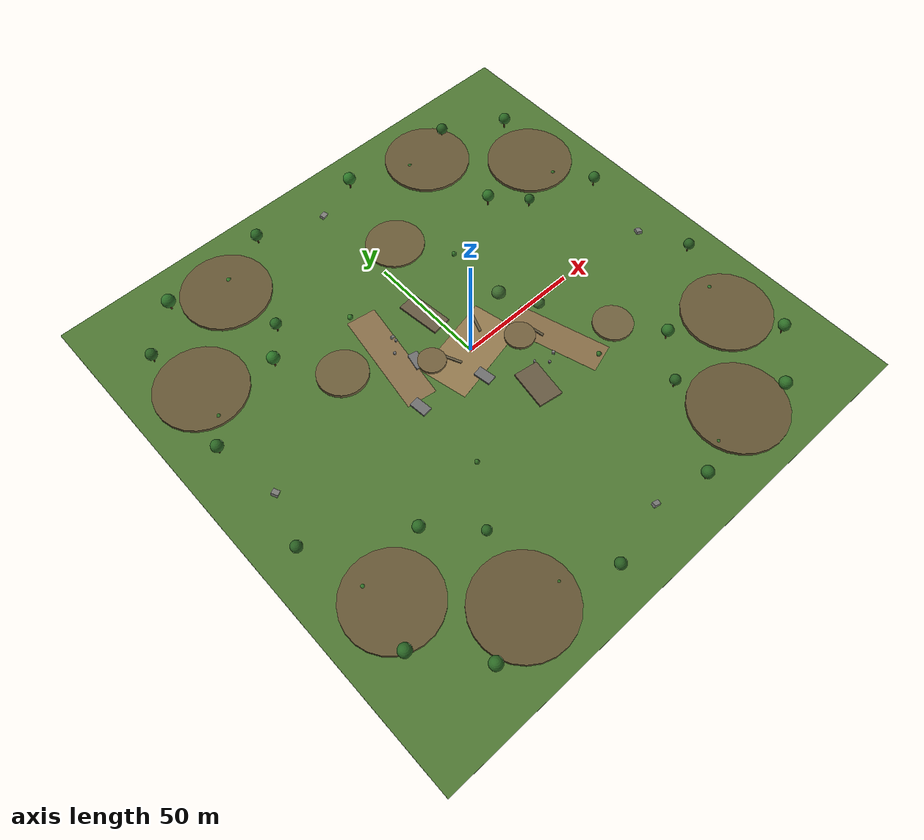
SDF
<?xml version="1.0" ?>
<sdf version="1.7">
  <model name="testworld">
    <static>true</static>
    <self_collide>false</self_collide>
    <allow_auto_disable>true</allow_auto_disable>

    <link name="terrain">
      <pose>0 0 0 0 0 0</pose>

      <collision name="ground_collision">
        <geometry>
          <box>
            <size>220 220 0.6</size>
          </box>
        </geometry>
        <pose>0 0 -0.3 0 0 0</pose>
      </collision>

      <visual name="ground_visual">
        <geometry>
          <box>
            <size>220 220 0.2</size>
          </box>
        </geometry>
        <pose>0 0 -0.1 0 0 0</pose>
        <material>
          <ambient>0.26 0.39 0.18 1</ambient>
          <diffuse>0.31 0.47 0.20 1</diffuse>
          <specular>0.05 0.05 0.05 1</specular>
        </material>
      </visual>

      <visual name="clearing_visual">
        <geometry>
          <box>
            <size>36 20 0.03</size>
          </box>
        </geometry>
        <pose>0 0 0.015 0 0 0.22</pose>
        <material>
          <ambient>0.46 0.38 0.25 1</ambient>
          <diffuse>0.58 0.48 0.31 1</diffuse>
          <specular>0.02 0.02 0.02 1</specular>
        </material>
      </visual>

      <visual name="trail_north">
        <geometry>
          <box>
            <size>12 44 0.03</size>
          </box>
        </geometry>
        <pose>-24 18 0.015 0 0 -0.15</pose>
        <material>
          <ambient>0.43 0.35 0.23 1</ambient>
          <diffuse>0.54 0.44 0.29 1</diffuse>
          <specular>0.02 0.02 0.02 1</specular>
        </material>
      </visual>

      <visual name="trail_south">
        <geometry>
          <box>
            <size>12 38 0.03</size>
          </box>
        </geometry>
        <pose>28 -18 0.015 0 0 0.3</pose>
        <material>
          <ambient>0.42 0.34 0.22 1</ambient>
          <diffuse>0.53 0.43 0.28 1</diffuse>
          <specular>0.02 0.02 0.02 1</specular>
        </material>
      </visual>
    </link>

    <link name="perimeter_berm_north_west">
      <pose>-52 84 0.65 0 0 0.1</pose>
      <collision name="collision">
        <geometry>
          <cylinder>
            <radius>18</radius>
            <length>1.3</length>
          </cylinder>
        </geometry>
      </collision>
      <visual name="visual">
        <geometry>
          <cylinder>
            <radius>18</radius>
            <length>1.3</length>
          </cylinder>
        </geometry>
        <material>
          <ambient>0.30 0.26 0.17 1</ambient>
          <diffuse>0.40 0.34 0.21 1</diffuse>
        </material>
      </visual>
    </link>

    <link name="perimeter_berm_north_east">
      <pose>52 84 0.65 0 0 -0.08</pose>
      <collision name="collision">
        <geometry>
          <cylinder>
            <radius>18</radius>
            <length>1.3</length>
          </cylinder>
        </geometry>
      </collision>
      <visual name="visual">
        <geometry>
          <cylinder>
            <radius>18</radius>
            <length>1.3</length>
          </cylinder>
        </geometry>
        <material>
          <ambient>0.30 0.26 0.17 1</ambient>
          <diffuse>0.40 0.34 0.21 1</diffuse>
        </material>
      </visual>
    </link>

    <link name="perimeter_berm_south_west">
      <pose>-54 -84 0.7 0 0 0.06</pose>
      <collision name="collision">
        <geometry>
          <cylinder>
            <radius>19</radius>
            <length>1.4</length>
          </cylinder>
        </geometry>
      </collision>
      <visual name="visual">
        <geometry>
          <cylinder>
            <radius>19</radius>
            <length>1.4</length>
          </cylinder>
        </geometry>
        <material>
          <ambient>0.29 0.25 0.16 1</ambient>
          <diffuse>0.39 0.33 0.20 1</diffuse>
        </material>
      </visual>
    </link>

    <link name="perimeter_berm_south_east">
      <pose>54 -84 0.7 0 0 -0.04</pose>
      <collision name="collision">
        <geometry>
          <cylinder>
            <radius>19</radius>
            <length>1.4</length>
          </cylinder>
        </geometry>
      </collision>
      <visual name="visual">
        <geometry>
          <cylinder>
            <radius>19</radius>
            <length>1.4</length>
          </cylinder>
        </geometry>
        <material>
          <ambient>0.29 0.25 0.16 1</ambient>
          <diffuse>0.39 0.33 0.20 1</diffuse>
        </material>
      </visual>
    </link>

    <link name="perimeter_berm_west_north">
      <pose>-84 54 0.65 0 0 0.1</pose>
      <collision name="collision">
        <geometry>
          <cylinder>
            <radius>18</radius>
            <length>1.3</length>
          </cylinder>
        </geometry>
      </collision>
      <visual name="visual">
        <geometry>
          <cylinder>
            <radius>18</radius>
            <length>1.3</length>
          </cylinder>
        </geometry>
        <material>
          <ambient>0.30 0.26 0.17 1</ambient>
          <diffuse>0.40 0.34 0.21 1</diffuse>
        </material>
      </visual>
    </link>

    <link name="perimeter_berm_west_south">
      <pose>-84 -54 0.65 0 0 -0.1</pose>
      <collision name="collision">
        <geometry>
          <cylinder>
            <radius>18</radius>
            <length>1.3</length>
          </cylinder>
        </geometry>
      </collision>
      <visual name="visual">
        <geometry>
          <cylinder>
            <radius>18</radius>
            <length>1.3</length>
          </cylinder>
        </geometry>
        <material>
          <ambient>0.30 0.26 0.17 1</ambient>
          <diffuse>0.40 0.34 0.21 1</diffuse>
        </material>
      </visual>
    </link>

    <link name="perimeter_berm_east_north">
      <pose>84 54 0.65 0 0 -0.1</pose>
      <collision name="collision">
        <geometry>
          <cylinder>
            <radius>18</radius>
            <length>1.3</length>
          </cylinder>
        </geometry>
      </collision>
      <visual name="visual">
        <geometry>
          <cylinder>
            <radius>18</radius>
            <length>1.3</length>
          </cylinder>
        </geometry>
        <material>
          <ambient>0.30 0.26 0.17 1</ambient>
          <diffuse>0.40 0.34 0.21 1</diffuse>
        </material>
      </visual>
    </link>

    <link name="perimeter_berm_east_south">
      <pose>84 -54 0.65 0 0 0.08</pose>
      <collision name="collision">
        <geometry>
          <cylinder>
            <radius>18</radius>
            <length>1.3</length>
          </cylinder>
        </geometry>
      </collision>
      <visual name="visual">
        <geometry>
          <cylinder>
            <radius>18</radius>
            <length>1.3</length>
          </cylinder>
        </geometry>
        <material>
          <ambient>0.30 0.26 0.17 1</ambient>
          <diffuse>0.40 0.34 0.21 1</diffuse>
        </material>
      </visual>
    </link>

    <link name="berm_west">
      <pose>-42 24 0.8 0 0 0.35</pose>
      <collision name="collision">
        <geometry>
          <cylinder>
            <radius>10</radius>
            <length>1.6</length>
          </cylinder>
        </geometry>
      </collision>
      <visual name="visual">
        <geometry>
          <cylinder>
            <radius>10</radius>
            <length>1.6</length>
          </cylinder>
        </geometry>
        <material>
          <ambient>0.35 0.30 0.20 1</ambient>
          <diffuse>0.43 0.37 0.23 1</diffuse>
        </material>
      </visual>
    </link>

    <link name="berm_east">
      <pose>48 -28 0.6 0 0 -0.2</pose>
      <collision name="collision">
        <geometry>
          <cylinder>
            <radius>8</radius>
            <length>1.2</length>
          </cylinder>
        </geometry>
      </collision>
      <visual name="visual">
        <geometry>
          <cylinder>
            <radius>8</radius>
            <length>1.2</length>
          </cylinder>
        </geometry>
        <material>
          <ambient>0.37 0.31 0.20 1</ambient>
          <diffuse>0.44 0.38 0.24 1</diffuse>
        </material>
      </visual>
    </link>

    <link name="berm_far_north">
      <pose>12 58 0.5 0 0 0.1</pose>
      <collision name="collision">
        <geometry>
          <cylinder>
            <radius>12</radius>
            <length>1.0</length>
          </cylinder>
        </geometry>
      </collision>
      <visual name="visual">
        <geometry>
          <cylinder>
            <radius>12</radius>
            <length>1.0</length>
          </cylinder>
        </geometry>
        <material>
          <ambient>0.34 0.29 0.18 1</ambient>
          <diffuse>0.42 0.36 0.22 1</diffuse>
        </material>
      </visual>
    </link>

    <link name="tree_cluster_nw_1">
      <pose>-58 44 0 0 0 0</pose>
      <collision name="trunk_collision">
        <pose>0 0 2.2 0 0 0</pose>
        <geometry>
          <cylinder>
            <radius>0.34</radius>
            <length>4.4</length>
          </cylinder>
        </geometry>
      </collision>
      <collision name="canopy_collision">
        <pose>0 0 5.5 0 0 0</pose>
        <geometry>
          <sphere>
            <radius>2.2</radius>
          </sphere>
        </geometry>
      </collision>
      <visual name="trunk_visual">
        <pose>0 0 2.2 0 0 0</pose>
        <geometry>
          <cylinder>
            <radius>0.30</radius>
            <length>4.4</length>
          </cylinder>
        </geometry>
        <material>
          <ambient>0.31 0.20 0.11 1</ambient>
          <diffuse>0.40 0.25 0.14 1</diffuse>
        </material>
      </visual>
      <visual name="canopy_visual">
        <pose>0 0 5.6 0 0 0</pose>
        <geometry>
          <sphere>
            <radius>2.5</radius>
          </sphere>
        </geometry>
        <material>
          <ambient>0.12 0.30 0.12 1</ambient>
          <diffuse>0.18 0.47 0.16 1</diffuse>
        </material>
      </visual>
    </link>

    <link name="tree_cluster_nw_2">
      <pose>-48 56 0 0 0 0</pose>
      <collision name="trunk_collision">
        <pose>0 0 2.0 0 0 0</pose>
        <geometry>
          <cylinder>
            <radius>0.28</radius>
            <length>4.0</length>
          </cylinder>
        </geometry>
      </collision>
      <collision name="canopy_collision">
        <pose>0 0 5.0 0 0 0</pose>
        <geometry>
          <sphere>
            <radius>1.9</radius>
          </sphere>
        </geometry>
      </collision>
      <visual name="trunk_visual">
        <pose>0 0 2.0 0 0 0</pose>
        <geometry>
          <cylinder>
            <radius>0.25</radius>
            <length>4.0</length>
          </cylinder>
        </geometry>
        <material>
          <ambient>0.30 0.19 0.10 1</ambient>
          <diffuse>0.38 0.24 0.13 1</diffuse>
        </material>
      </visual>
      <visual name="canopy_visual">
        <pose>0 0 5.0 0 0 0</pose>
        <geometry>
          <sphere>
            <radius>2.2</radius>
          </sphere>
        </geometry>
        <material>
          <ambient>0.10 0.27 0.10 1</ambient>
          <diffuse>0.16 0.40 0.14 1</diffuse>
        </material>
      </visual>
    </link>

    <link name="tree_cluster_ne_1">
      <pose>54 48 0 0 0 0</pose>
      <collision name="trunk_collision">
        <pose>0 0 2.3 0 0 0</pose>
        <geometry>
          <cylinder>
            <radius>0.35</radius>
            <length>4.6</length>
          </cylinder>
        </geometry>
      </collision>
      <collision name="canopy_collision">
        <pose>0 0 5.7 0 0 0</pose>
        <geometry>
          <sphere>
            <radius>2.1</radius>
          </sphere>
        </geometry>
      </collision>
      <visual name="trunk_visual">
        <pose>0 0 2.3 0 0 0</pose>
        <geometry>
          <cylinder>
            <radius>0.32</radius>
            <length>4.6</length>
          </cylinder>
        </geometry>
        <material>
          <ambient>0.31 0.20 0.11 1</ambient>
          <diffuse>0.39 0.24 0.13 1</diffuse>
        </material>
      </visual>
      <visual name="canopy_visual">
        <pose>0 0 5.8 0 0 0</pose>
        <geometry>
          <sphere>
            <radius>2.4</radius>
          </sphere>
        </geometry>
        <material>
          <ambient>0.13 0.29 0.12 1</ambient>
          <diffuse>0.18 0.44 0.15 1</diffuse>
        </material>
      </visual>
    </link>

    <link name="tree_cluster_ne_2">
      <pose>66 36 0 0 0 0</pose>
      <collision name="trunk_collision">
        <pose>0 0 1.8 0 0 0</pose>
        <geometry>
          <cylinder>
            <radius>0.25</radius>
            <length>3.6</length>
          </cylinder>
        </geometry>
      </collision>
      <collision name="canopy_collision">
        <pose>0 0 4.5 0 0 0</pose>
        <geometry>
          <sphere>
            <radius>1.7</radius>
          </sphere>
        </geometry>
      </collision>
      <visual name="trunk_visual">
        <pose>0 0 1.8 0 0 0</pose>
        <geometry>
          <cylinder>
            <radius>0.22</radius>
            <length>3.6</length>
          </cylinder>
        </geometry>
        <material>
          <ambient>0.29 0.18 0.10 1</ambient>
          <diffuse>0.36 0.23 0.12 1</diffuse>
        </material>
      </visual>
      <visual name="canopy_visual">
        <pose>0 0 4.5 0 0 0</pose>
        <geometry>
          <sphere>
            <radius>2.0</radius>
          </sphere>
        </geometry>
        <material>
          <ambient>0.10 0.25 0.09 1</ambient>
          <diffuse>0.15 0.37 0.13 1</diffuse>
        </material>
      </visual>
    </link>

    <link name="tree_cluster_sw_1">
      <pose>-62 -42 0 0 0 0</pose>
      <collision name="trunk_collision">
        <pose>0 0 2.1 0 0 0</pose>
        <geometry>
          <cylinder>
            <radius>0.30</radius>
            <length>4.2</length>
          </cylinder>
        </geometry>
      </collision>
      <collision name="canopy_collision">
        <pose>0 0 5.1 0 0 0</pose>
        <geometry>
          <sphere>
            <radius>2.0</radius>
          </sphere>
        </geometry>
      </collision>
      <visual name="trunk_visual">
        <pose>0 0 2.1 0 0 0</pose>
        <geometry>
          <cylinder>
            <radius>0.27</radius>
            <length>4.2</length>
          </cylinder>
        </geometry>
        <material>
          <ambient>0.30 0.19 0.10 1</ambient>
          <diffuse>0.38 0.24 0.13 1</diffuse>
        </material>
      </visual>
      <visual name="canopy_visual">
        <pose>0 0 5.1 0 0 0</pose>
        <geometry>
          <sphere>
            <radius>2.3</radius>
          </sphere>
        </geometry>
        <material>
          <ambient>0.11 0.27 0.10 1</ambient>
          <diffuse>0.17 0.41 0.14 1</diffuse>
        </material>
      </visual>
    </link>

    <link name="tree_cluster_sw_2">
      <pose>-46 -58 0 0 0 0</pose>
      <collision name="trunk_collision">
        <pose>0 0 1.7 0 0 0</pose>
        <geometry>
          <cylinder>
            <radius>0.24</radius>
            <length>3.4</length>
          </cylinder>
        </geometry>
      </collision>
      <collision name="canopy_collision">
        <pose>0 0 4.1 0 0 0</pose>
        <geometry>
          <sphere>
            <radius>1.6</radius>
          </sphere>
        </geometry>
      </collision>
      <visual name="trunk_visual">
        <pose>0 0 1.7 0 0 0</pose>
        <geometry>
          <cylinder>
            <radius>0.21</radius>
            <length>3.4</length>
          </cylinder>
        </geometry>
        <material>
          <ambient>0.28 0.18 0.09 1</ambient>
          <diffuse>0.35 0.22 0.12 1</diffuse>
        </material>
      </visual>
      <visual name="canopy_visual">
        <pose>0 0 4.1 0 0 0</pose>
        <geometry>
          <sphere>
            <radius>1.9</radius>
          </sphere>
        </geometry>
        <material>
          <ambient>0.11 0.26 0.10 1</ambient>
          <diffuse>0.16 0.38 0.13 1</diffuse>
        </material>
      </visual>
    </link>

    <link name="tree_cluster_se_1">
      <pose>58 -46 0 0 0 0</pose>
      <collision name="trunk_collision">
        <pose>0 0 2.2 0 0 0</pose>
        <geometry>
          <cylinder>
            <radius>0.33</radius>
            <length>4.4</length>
          </cylinder>
        </geometry>
      </collision>
      <collision name="canopy_collision">
        <pose>0 0 5.4 0 0 0</pose>
        <geometry>
          <sphere>
            <radius>2.0</radius>
          </sphere>
        </geometry>
      </collision>
      <visual name="trunk_visual">
        <pose>0 0 2.2 0 0 0</pose>
        <geometry>
          <cylinder>
            <radius>0.29</radius>
            <length>4.4</length>
          </cylinder>
        </geometry>
        <material>
          <ambient>0.31 0.20 0.11 1</ambient>
          <diffuse>0.40 0.25 0.14 1</diffuse>
        </material>
      </visual>
      <visual name="canopy_visual">
        <pose>0 0 5.4 0 0 0</pose>
        <geometry>
          <sphere>
            <radius>2.4</radius>
          </sphere>
        </geometry>
        <material>
          <ambient>0.13 0.29 0.11 1</ambient>
          <diffuse>0.18 0.43 0.15 1</diffuse>
        </material>
      </visual>
    </link>

    <link name="tree_cluster_se_2">
      <pose>44 -62 0 0 0 0</pose>
      <collision name="trunk_collision">
        <pose>0 0 1.9 0 0 0</pose>
        <geometry>
          <cylinder>
            <radius>0.26</radius>
            <length>3.8</length>
          </cylinder>
        </geometry>
      </collision>
      <collision name="canopy_collision">
        <pose>0 0 4.7 0 0 0</pose>
        <geometry>
          <sphere>
            <radius>1.8</radius>
          </sphere>
        </geometry>
      </collision>
      <visual name="trunk_visual">
        <pose>0 0 1.9 0 0 0</pose>
        <geometry>
          <cylinder>
            <radius>0.23</radius>
            <length>3.8</length>
          </cylinder>
        </geometry>
        <material>
          <ambient>0.29 0.18 0.09 1</ambient>
          <diffuse>0.36 0.23 0.12 1</diffuse>
        </material>
      </visual>
      <visual name="canopy_visual">
        <pose>0 0 4.7 0 0 0</pose>
        <geometry>
          <sphere>
            <radius>2.1</radius>
          </sphere>
        </geometry>
        <material>
          <ambient>0.10 0.25 0.09 1</ambient>
          <diffuse>0.16 0.37 0.13 1</diffuse>
        </material>
      </visual>
    </link>

    <link name="bush_northwest">
      <pose>-24 42 0.55 0 0 0</pose>
      <collision name="collision">
        <geometry>
          <sphere>
            <radius>0.9</radius>
          </sphere>
        </geometry>
      </collision>
      <visual name="visual">
        <geometry>
          <sphere>
            <radius>1.1</radius>
          </sphere>
        </geometry>
        <material>
          <ambient>0.16 0.34 0.12 1</ambient>
          <diffuse>0.22 0.50 0.17 1</diffuse>
        </material>
      </visual>
    </link>

    <link name="bush_northeast">
      <pose>26 38 0.5 0 0 0</pose>
      <collision name="collision">
        <geometry>
          <sphere>
            <radius>0.8</radius>
          </sphere>
        </geometry>
      </collision>
      <visual name="visual">
        <geometry>
          <sphere>
            <radius>1.0</radius>
          </sphere>
        </geometry>
        <material>
          <ambient>0.15 0.31 0.11 1</ambient>
          <diffuse>0.20 0.45 0.16 1</diffuse>
        </material>
      </visual>
    </link>

    <link name="bush_southwest">
      <pose>-30 -36 0.45 0 0 0</pose>
      <collision name="collision">
        <geometry>
          <sphere>
            <radius>0.7</radius>
          </sphere>
        </geometry>
      </collision>
      <visual name="visual">
        <geometry>
          <sphere>
            <radius>0.95</radius>
          </sphere>
        </geometry>
        <material>
          <ambient>0.15 0.29 0.10 1</ambient>
          <diffuse>0.20 0.42 0.14 1</diffuse>
        </material>
      </visual>
    </link>

    <link name="bush_southeast">
      <pose>34 -34 0.5 0 0 0</pose>
      <collision name="collision">
        <geometry>
          <sphere>
            <radius>0.75</radius>
          </sphere>
        </geometry>
      </collision>
      <visual name="visual">
        <geometry>
          <sphere>
            <radius>1.0</radius>
          </sphere>
        </geometry>
        <material>
          <ambient>0.15 0.30 0.11 1</ambient>
          <diffuse>0.21 0.44 0.15 1</diffuse>
        </material>
      </visual>
    </link>

    <link name="rock_west">
      <pose>-18 24 0.45 0.1 0.3 0</pose>
      <collision name="collision">
        <geometry>
          <box>
            <size>1.2 1.0 0.9</size>
          </box>
        </geometry>
      </collision>
      <visual name="visual">
        <geometry>
          <box>
            <size>1.4 1.1 1.0</size>
          </box>
        </geometry>
        <material>
          <ambient>0.42 0.42 0.40 1</ambient>
          <diffuse>0.54 0.54 0.52 1</diffuse>
        </material>
      </visual>
    </link>

    <link name="rock_east">
      <pose>22 -22 0.35 -0.15 0.2 0.5</pose>
      <collision name="collision">
        <geometry>
          <box>
            <size>1.0 0.9 0.7</size>
          </box>
        </geometry>
      </collision>
      <visual name="visual">
        <geometry>
          <box>
            <size>1.2 1.0 0.8</size>
          </box>
        </geometry>
        <material>
          <ambient>0.40 0.40 0.39 1</ambient>
          <diffuse>0.50 0.50 0.49 1</diffuse>
        </material>
      </visual>
    </link>

    <link name="tree_north_1">
      <pose>-72 92 0 0 0 0</pose>
      <collision name="trunk_collision">
        <pose>0 0 2.1 0 0 0</pose>
        <geometry>
          <cylinder>
            <radius>0.34</radius>
            <length>4.2</length>
          </cylinder>
        </geometry>
      </collision>
      <collision name="canopy_collision">
        <pose>0 0 5.3 0 0 0</pose>
        <geometry>
          <sphere>
            <radius>2.3</radius>
          </sphere>
        </geometry>
      </collision>
      <visual name="trunk_visual">
        <pose>0 0 2.1 0 0 0</pose>
        <geometry>
          <cylinder>
            <radius>0.30</radius>
            <length>4.2</length>
          </cylinder>
        </geometry>
        <material>
          <ambient>0.31 0.20 0.11 1</ambient>
          <diffuse>0.40 0.25 0.14 1</diffuse>
        </material>
      </visual>
      <visual name="canopy_visual">
        <pose>0 0 5.4 0 0 0</pose>
        <geometry>
          <sphere>
            <radius>2.7</radius>
          </sphere>
        </geometry>
        <material>
          <ambient>0.11 0.28 0.11 1</ambient>
          <diffuse>0.18 0.44 0.16 1</diffuse>
        </material>
      </visual>
    </link>

    <link name="tree_north_2">
      <pose>-28 96 0 0 0 0</pose>
      <collision name="trunk_collision">
        <pose>0 0 2.0 0 0 0</pose>
        <geometry>
          <cylinder>
            <radius>0.30</radius>
            <length>4.0</length>
          </cylinder>
        </geometry>
      </collision>
      <collision name="canopy_collision">
        <pose>0 0 5.0 0 0 0</pose>
        <geometry>
          <sphere>
            <radius>2.1</radius>
          </sphere>
        </geometry>
      </collision>
      <visual name="trunk_visual">
        <pose>0 0 2.0 0 0 0</pose>
        <geometry>
          <cylinder>
            <radius>0.26</radius>
            <length>4.0</length>
          </cylinder>
        </geometry>
        <material>
          <ambient>0.30 0.19 0.10 1</ambient>
          <diffuse>0.38 0.24 0.13 1</diffuse>
        </material>
      </visual>
      <visual name="canopy_visual">
        <pose>0 0 5.0 0 0 0</pose>
        <geometry>
          <sphere>
            <radius>2.4</radius>
          </sphere>
        </geometry>
        <material>
          <ambient>0.10 0.27 0.10 1</ambient>
          <diffuse>0.16 0.40 0.14 1</diffuse>
        </material>
      </visual>
    </link>

    <link name="tree_north_3">
      <pose>18 94 0 0 0 0</pose>
      <collision name="trunk_collision">
        <pose>0 0 2.2 0 0 0</pose>
        <geometry>
          <cylinder>
            <radius>0.34</radius>
            <length>4.4</length>
          </cylinder>
        </geometry>
      </collision>
      <collision name="canopy_collision">
        <pose>0 0 5.5 0 0 0</pose>
        <geometry>
          <sphere>
            <radius>2.2</radius>
          </sphere>
        </geometry>
      </collision>
      <visual name="trunk_visual">
        <pose>0 0 2.2 0 0 0</pose>
        <geometry>
          <cylinder>
            <radius>0.30</radius>
            <length>4.4</length>
          </cylinder>
        </geometry>
        <material>
          <ambient>0.31 0.20 0.11 1</ambient>
          <diffuse>0.40 0.25 0.14 1</diffuse>
        </material>
      </visual>
      <visual name="canopy_visual">
        <pose>0 0 5.6 0 0 0</pose>
        <geometry>
          <sphere>
            <radius>2.6</radius>
          </sphere>
        </geometry>
        <material>
          <ambient>0.12 0.30 0.12 1</ambient>
          <diffuse>0.18 0.47 0.16 1</diffuse>
        </material>
      </visual>
    </link>

    <link name="tree_north_4">
      <pose>66 90 0 0 0 0</pose>
      <collision name="trunk_collision">
        <pose>0 0 1.9 0 0 0</pose>
        <geometry>
          <cylinder>
            <radius>0.28</radius>
            <length>3.8</length>
          </cylinder>
        </geometry>
      </collision>
      <collision name="canopy_collision">
        <pose>0 0 4.8 0 0 0</pose>
        <geometry>
          <sphere>
            <radius>2.0</radius>
          </sphere>
        </geometry>
      </collision>
      <visual name="trunk_visual">
        <pose>0 0 1.9 0 0 0</pose>
        <geometry>
          <cylinder>
            <radius>0.24</radius>
            <length>3.8</length>
          </cylinder>
        </geometry>
        <material>
          <ambient>0.29 0.18 0.09 1</ambient>
          <diffuse>0.36 0.23 0.12 1</diffuse>
        </material>
      </visual>
      <visual name="canopy_visual">
        <pose>0 0 4.8 0 0 0</pose>
        <geometry>
          <sphere>
            <radius>2.3</radius>
          </sphere>
        </geometry>
        <material>
          <ambient>0.10 0.25 0.09 1</ambient>
          <diffuse>0.16 0.37 0.13 1</diffuse>
        </material>
      </visual>
    </link>

    <link name="tree_south_1">
      <pose>-74 -92 0 0 0 0</pose>
      <collision name="trunk_collision">
        <pose>0 0 2.1 0 0 0</pose>
        <geometry>
          <cylinder>
            <radius>0.32</radius>
            <length>4.2</length>
          </cylinder>
        </geometry>
      </collision>
      <collision name="canopy_collision">
        <pose>0 0 5.2 0 0 0</pose>
        <geometry>
          <sphere>
            <radius>2.2</radius>
          </sphere>
        </geometry>
      </collision>
      <visual name="trunk_visual">
        <pose>0 0 2.1 0 0 0</pose>
        <geometry>
          <cylinder>
            <radius>0.28</radius>
            <length>4.2</length>
          </cylinder>
        </geometry>
        <material>
          <ambient>0.30 0.19 0.10 1</ambient>
          <diffuse>0.38 0.24 0.13 1</diffuse>
        </material>
      </visual>
      <visual name="canopy_visual">
        <pose>0 0 5.2 0 0 0</pose>
        <geometry>
          <sphere>
            <radius>2.5</radius>
          </sphere>
        </geometry>
        <material>
          <ambient>0.11 0.27 0.10 1</ambient>
          <diffuse>0.17 0.41 0.14 1</diffuse>
        </material>
      </visual>
    </link>

    <link name="tree_south_2">
      <pose>-22 -96 0 0 0 0</pose>
      <collision name="trunk_collision">
        <pose>0 0 1.9 0 0 0</pose>
        <geometry>
          <cylinder>
            <radius>0.27</radius>
            <length>3.8</length>
          </cylinder>
        </geometry>
      </collision>
      <collision name="canopy_collision">
        <pose>0 0 4.7 0 0 0</pose>
        <geometry>
          <sphere>
            <radius>1.9</radius>
          </sphere>
        </geometry>
      </collision>
      <visual name="trunk_visual">
        <pose>0 0 1.9 0 0 0</pose>
        <geometry>
          <cylinder>
            <radius>0.23</radius>
            <length>3.8</length>
          </cylinder>
        </geometry>
        <material>
          <ambient>0.29 0.18 0.09 1</ambient>
          <diffuse>0.36 0.23 0.12 1</diffuse>
        </material>
      </visual>
      <visual name="canopy_visual">
        <pose>0 0 4.7 0 0 0</pose>
        <geometry>
          <sphere>
            <radius>2.2</radius>
          </sphere>
        </geometry>
        <material>
          <ambient>0.10 0.25 0.09 1</ambient>
          <diffuse>0.16 0.37 0.13 1</diffuse>
        </material>
      </visual>
    </link>

    <link name="tree_south_3">
      <pose>24 -94 0 0 0 0</pose>
      <collision name="trunk_collision">
        <pose>0 0 2.0 0 0 0</pose>
        <geometry>
          <cylinder>
            <radius>0.31</radius>
            <length>4.0</length>
          </cylinder>
        </geometry>
      </collision>
      <collision name="canopy_collision">
        <pose>0 0 5.0 0 0 0</pose>
        <geometry>
          <sphere>
            <radius>2.1</radius>
          </sphere>
        </geometry>
      </collision>
      <visual name="trunk_visual">
        <pose>0 0 2.0 0 0 0</pose>
        <geometry>
          <cylinder>
            <radius>0.27</radius>
            <length>4.0</length>
          </cylinder>
        </geometry>
        <material>
          <ambient>0.30 0.19 0.10 1</ambient>
          <diffuse>0.38 0.24 0.13 1</diffuse>
        </material>
      </visual>
      <visual name="canopy_visual">
        <pose>0 0 5.0 0 0 0</pose>
        <geometry>
          <sphere>
            <radius>2.4</radius>
          </sphere>
        </geometry>
        <material>
          <ambient>0.11 0.26 0.10 1</ambient>
          <diffuse>0.17 0.40 0.14 1</diffuse>
        </material>
      </visual>
    </link>

    <link name="tree_south_4">
      <pose>72 -90 0 0 0 0</pose>
      <collision name="trunk_collision">
        <pose>0 0 2.2 0 0 0</pose>
        <geometry>
          <cylinder>
            <radius>0.33</radius>
            <length>4.4</length>
          </cylinder>
        </geometry>
      </collision>
      <collision name="canopy_collision">
        <pose>0 0 5.4 0 0 0</pose>
        <geometry>
          <sphere>
            <radius>2.2</radius>
          </sphere>
        </geometry>
      </collision>
      <visual name="trunk_visual">
        <pose>0 0 2.2 0 0 0</pose>
        <geometry>
          <cylinder>
            <radius>0.29</radius>
            <length>4.4</length>
          </cylinder>
        </geometry>
        <material>
          <ambient>0.31 0.20 0.11 1</ambient>
          <diffuse>0.40 0.25 0.14 1</diffuse>
        </material>
      </visual>
      <visual name="canopy_visual">
        <pose>0 0 5.4 0 0 0</pose>
        <geometry>
          <sphere>
            <radius>2.5</radius>
          </sphere>
        </geometry>
        <material>
          <ambient>0.13 0.29 0.11 1</ambient>
          <diffuse>0.18 0.43 0.15 1</diffuse>
        </material>
      </visual>
    </link>

    <link name="tree_west_1">
      <pose>-92 -70 0 0 0 0</pose>
      <collision name="trunk_collision">
        <pose>0 0 2.0 0 0 0</pose>
        <geometry>
          <cylinder>
            <radius>0.31</radius>
            <length>4.0</length>
          </cylinder>
        </geometry>
      </collision>
      <collision name="canopy_collision">
        <pose>0 0 5.0 0 0 0</pose>
        <geometry>
          <sphere>
            <radius>2.2</radius>
          </sphere>
        </geometry>
      </collision>
      <visual name="trunk_visual">
        <pose>0 0 2.0 0 0 0</pose>
        <geometry>
          <cylinder>
            <radius>0.27</radius>
            <length>4.0</length>
          </cylinder>
        </geometry>
        <material>
          <ambient>0.30 0.19 0.10 1</ambient>
          <diffuse>0.38 0.24 0.13 1</diffuse>
        </material>
      </visual>
      <visual name="canopy_visual">
        <pose>0 0 5.0 0 0 0</pose>
        <geometry>
          <sphere>
            <radius>2.5</radius>
          </sphere>
        </geometry>
        <material>
          <ambient>0.10 0.27 0.10 1</ambient>
          <diffuse>0.16 0.40 0.14 1</diffuse>
        </material>
      </visual>
    </link>

    <link name="tree_west_2">
      <pose>-96 -20 0 0 0 0</pose>
      <collision name="trunk_collision">
        <pose>0 0 1.8 0 0 0</pose>
        <geometry>
          <cylinder>
            <radius>0.27</radius>
            <length>3.6</length>
          </cylinder>
        </geometry>
      </collision>
      <collision name="canopy_collision">
        <pose>0 0 4.5 0 0 0</pose>
        <geometry>
          <sphere>
            <radius>1.9</radius>
          </sphere>
        </geometry>
      </collision>
      <visual name="trunk_visual">
        <pose>0 0 1.8 0 0 0</pose>
        <geometry>
          <cylinder>
            <radius>0.23</radius>
            <length>3.6</length>
          </cylinder>
        </geometry>
        <material>
          <ambient>0.29 0.18 0.09 1</ambient>
          <diffuse>0.36 0.23 0.12 1</diffuse>
        </material>
      </visual>
      <visual name="canopy_visual">
        <pose>0 0 4.5 0 0 0</pose>
        <geometry>
          <sphere>
            <radius>2.2</radius>
          </sphere>
        </geometry>
        <material>
          <ambient>0.10 0.25 0.09 1</ambient>
          <diffuse>0.16 0.37 0.13 1</diffuse>
        </material>
      </visual>
    </link>

    <link name="tree_west_3">
      <pose>-94 28 0 0 0 0</pose>
      <collision name="trunk_collision">
        <pose>0 0 2.1 0 0 0</pose>
        <geometry>
          <cylinder>
            <radius>0.32</radius>
            <length>4.2</length>
          </cylinder>
        </geometry>
      </collision>
      <collision name="canopy_collision">
        <pose>0 0 5.2 0 0 0</pose>
        <geometry>
          <sphere>
            <radius>2.1</radius>
          </sphere>
        </geometry>
      </collision>
      <visual name="trunk_visual">
        <pose>0 0 2.1 0 0 0</pose>
        <geometry>
          <cylinder>
            <radius>0.28</radius>
            <length>4.2</length>
          </cylinder>
        </geometry>
        <material>
          <ambient>0.30 0.19 0.10 1</ambient>
          <diffuse>0.38 0.24 0.13 1</diffuse>
        </material>
      </visual>
      <visual name="canopy_visual">
        <pose>0 0 5.2 0 0 0</pose>
        <geometry>
          <sphere>
            <radius>2.4</radius>
          </sphere>
        </geometry>
        <material>
          <ambient>0.11 0.26 0.10 1</ambient>
          <diffuse>0.17 0.40 0.14 1</diffuse>
        </material>
      </visual>
    </link>

    <link name="tree_west_4">
      <pose>-90 76 0 0 0 0</pose>
      <collision name="trunk_collision">
        <pose>0 0 2.0 0 0 0</pose>
        <geometry>
          <cylinder>
            <radius>0.29</radius>
            <length>4.0</length>
          </cylinder>
        </geometry>
      </collision>
      <collision name="canopy_collision">
        <pose>0 0 4.9 0 0 0</pose>
        <geometry>
          <sphere>
            <radius>2.0</radius>
          </sphere>
        </geometry>
      </collision>
      <visual name="trunk_visual">
        <pose>0 0 2.0 0 0 0</pose>
        <geometry>
          <cylinder>
            <radius>0.25</radius>
            <length>4.0</length>
          </cylinder>
        </geometry>
        <material>
          <ambient>0.29 0.18 0.09 1</ambient>
          <diffuse>0.36 0.23 0.12 1</diffuse>
        </material>
      </visual>
      <visual name="canopy_visual">
        <pose>0 0 4.9 0 0 0</pose>
        <geometry>
          <sphere>
            <radius>2.3</radius>
          </sphere>
        </geometry>
        <material>
          <ambient>0.10 0.25 0.09 1</ambient>
          <diffuse>0.16 0.37 0.13 1</diffuse>
        </material>
      </visual>
    </link>

    <link name="tree_east_1">
      <pose>92 -74 0 0 0 0</pose>
      <collision name="trunk_collision">
        <pose>0 0 2.2 0 0 0</pose>
        <geometry>
          <cylinder>
            <radius>0.33</radius>
            <length>4.4</length>
          </cylinder>
        </geometry>
      </collision>
      <collision name="canopy_collision">
        <pose>0 0 5.4 0 0 0</pose>
        <geometry>
          <sphere>
            <radius>2.1</radius>
          </sphere>
        </geometry>
      </collision>
      <visual name="trunk_visual">
        <pose>0 0 2.2 0 0 0</pose>
        <geometry>
          <cylinder>
            <radius>0.29</radius>
            <length>4.4</length>
          </cylinder>
        </geometry>
        <material>
          <ambient>0.31 0.20 0.11 1</ambient>
          <diffuse>0.40 0.25 0.14 1</diffuse>
        </material>
      </visual>
      <visual name="canopy_visual">
        <pose>0 0 5.4 0 0 0</pose>
        <geometry>
          <sphere>
            <radius>2.4</radius>
          </sphere>
        </geometry>
        <material>
          <ambient>0.13 0.29 0.11 1</ambient>
          <diffuse>0.18 0.43 0.15 1</diffuse>
        </material>
      </visual>
    </link>

    <link name="tree_east_2">
      <pose>96 -24 0 0 0 0</pose>
      <collision name="trunk_collision">
        <pose>0 0 1.9 0 0 0</pose>
        <geometry>
          <cylinder>
            <radius>0.27</radius>
            <length>3.8</length>
          </cylinder>
        </geometry>
      </collision>
      <collision name="canopy_collision">
        <pose>0 0 4.7 0 0 0</pose>
        <geometry>
          <sphere>
            <radius>1.9</radius>
          </sphere>
        </geometry>
      </collision>
      <visual name="trunk_visual">
        <pose>0 0 1.9 0 0 0</pose>
        <geometry>
          <cylinder>
            <radius>0.23</radius>
            <length>3.8</length>
          </cylinder>
        </geometry>
        <material>
          <ambient>0.29 0.18 0.09 1</ambient>
          <diffuse>0.36 0.23 0.12 1</diffuse>
        </material>
      </visual>
      <visual name="canopy_visual">
        <pose>0 0 4.7 0 0 0</pose>
        <geometry>
          <sphere>
            <radius>2.2</radius>
          </sphere>
        </geometry>
        <material>
          <ambient>0.10 0.25 0.09 1</ambient>
          <diffuse>0.16 0.37 0.13 1</diffuse>
        </material>
      </visual>
    </link>

    <link name="tree_east_3">
      <pose>94 26 0 0 0 0</pose>
      <collision name="trunk_collision">
        <pose>0 0 2.0 0 0 0</pose>
        <geometry>
          <cylinder>
            <radius>0.31</radius>
            <length>4.0</length>
          </cylinder>
        </geometry>
      </collision>
      <collision name="canopy_collision">
        <pose>0 0 5.0 0 0 0</pose>
        <geometry>
          <sphere>
            <radius>2.0</radius>
          </sphere>
        </geometry>
      </collision>
      <visual name="trunk_visual">
        <pose>0 0 2.0 0 0 0</pose>
        <geometry>
          <cylinder>
            <radius>0.27</radius>
            <length>4.0</length>
          </cylinder>
        </geometry>
        <material>
          <ambient>0.30 0.19 0.10 1</ambient>
          <diffuse>0.38 0.24 0.13 1</diffuse>
        </material>
      </visual>
      <visual name="canopy_visual">
        <pose>0 0 5.0 0 0 0</pose>
        <geometry>
          <sphere>
            <radius>2.3</radius>
          </sphere>
        </geometry>
        <material>
          <ambient>0.11 0.26 0.10 1</ambient>
          <diffuse>0.17 0.40 0.14 1</diffuse>
        </material>
      </visual>
    </link>

    <link name="tree_east_4">
      <pose>90 76 0 0 0 0</pose>
      <collision name="trunk_collision">
        <pose>0 0 2.1 0 0 0</pose>
        <geometry>
          <cylinder>
            <radius>0.30</radius>
            <length>4.2</length>
          </cylinder>
        </geometry>
      </collision>
      <collision name="canopy_collision">
        <pose>0 0 5.2 0 0 0</pose>
        <geometry>
          <sphere>
            <radius>2.1</radius>
          </sphere>
        </geometry>
      </collision>
      <visual name="trunk_visual">
        <pose>0 0 2.1 0 0 0</pose>
        <geometry>
          <cylinder>
            <radius>0.26</radius>
            <length>4.2</length>
          </cylinder>
        </geometry>
        <material>
          <ambient>0.30 0.19 0.10 1</ambient>
          <diffuse>0.38 0.24 0.13 1</diffuse>
        </material>
      </visual>
      <visual name="canopy_visual">
        <pose>0 0 5.2 0 0 0</pose>
        <geometry>
          <sphere>
            <radius>2.4</radius>
          </sphere>
        </geometry>
        <material>
          <ambient>0.11 0.27 0.10 1</ambient>
          <diffuse>0.17 0.41 0.14 1</diffuse>
        </material>
      </visual>
    </link>

    <link name="bush_north_wall_1">
      <pose>-48 88 0.55 0 0 0</pose>
      <collision name="collision">
        <geometry>
          <sphere>
            <radius>0.9</radius>
          </sphere>
        </geometry>
      </collision>
      <visual name="visual">
        <geometry>
          <sphere>
            <radius>1.2</radius>
          </sphere>
        </geometry>
        <material>
          <ambient>0.16 0.34 0.12 1</ambient>
          <diffuse>0.22 0.50 0.17 1</diffuse>
        </material>
      </visual>
    </link>

    <link name="bush_north_wall_2">
      <pose>44 86 0.5 0 0 0</pose>
      <collision name="collision">
        <geometry>
          <sphere>
            <radius>0.8</radius>
          </sphere>
        </geometry>
      </collision>
      <visual name="visual">
        <geometry>
          <sphere>
            <radius>1.1</radius>
          </sphere>
        </geometry>
        <material>
          <ambient>0.15 0.31 0.11 1</ambient>
          <diffuse>0.20 0.45 0.16 1</diffuse>
        </material>
      </visual>
    </link>

    <link name="bush_south_wall_1">
      <pose>-40 -86 0.45 0 0 0</pose>
      <collision name="collision">
        <geometry>
          <sphere>
            <radius>0.8</radius>
          </sphere>
        </geometry>
      </collision>
      <visual name="visual">
        <geometry>
          <sphere>
            <radius>1.1</radius>
          </sphere>
        </geometry>
        <material>
          <ambient>0.15 0.29 0.10 1</ambient>
          <diffuse>0.20 0.42 0.14 1</diffuse>
        </material>
      </visual>
    </link>

    <link name="bush_south_wall_2">
      <pose>38 -88 0.5 0 0 0</pose>
      <collision name="collision">
        <geometry>
          <sphere>
            <radius>0.8</radius>
          </sphere>
        </geometry>
      </collision>
      <visual name="visual">
        <geometry>
          <sphere>
            <radius>1.1</radius>
          </sphere>
        </geometry>
        <material>
          <ambient>0.15 0.30 0.11 1</ambient>
          <diffuse>0.21 0.44 0.15 1</diffuse>
        </material>
      </visual>
    </link>

    <link name="bush_west_wall_1">
      <pose>-88 -44 0.5 0 0 0</pose>
      <collision name="collision">
        <geometry>
          <sphere>
            <radius>0.8</radius>
          </sphere>
        </geometry>
      </collision>
      <visual name="visual">
        <geometry>
          <sphere>
            <radius>1.1</radius>
          </sphere>
        </geometry>
        <material>
          <ambient>0.15 0.31 0.11 1</ambient>
          <diffuse>0.20 0.45 0.16 1</diffuse>
        </material>
      </visual>
    </link>

    <link name="bush_west_wall_2">
      <pose>-86 40 0.5 0 0 0</pose>
      <collision name="collision">
        <geometry>
          <sphere>
            <radius>0.8</radius>
          </sphere>
        </geometry>
      </collision>
      <visual name="visual">
        <geometry>
          <sphere>
            <radius>1.1</radius>
          </sphere>
        </geometry>
        <material>
          <ambient>0.15 0.30 0.11 1</ambient>
          <diffuse>0.21 0.44 0.15 1</diffuse>
        </material>
      </visual>
    </link>

    <link name="bush_east_wall_1">
      <pose>88 -42 0.5 0 0 0</pose>
      <collision name="collision">
        <geometry>
          <sphere>
            <radius>0.8</radius>
          </sphere>
        </geometry>
      </collision>
      <visual name="visual">
        <geometry>
          <sphere>
            <radius>1.1</radius>
          </sphere>
        </geometry>
        <material>
          <ambient>0.15 0.31 0.11 1</ambient>
          <diffuse>0.20 0.45 0.16 1</diffuse>
        </material>
      </visual>
    </link>

    <link name="bush_east_wall_2">
      <pose>86 42 0.5 0 0 0</pose>
      <collision name="collision">
        <geometry>
          <sphere>
            <radius>0.8</radius>
          </sphere>
        </geometry>
      </collision>
      <visual name="visual">
        <geometry>
          <sphere>
            <radius>1.1</radius>
          </sphere>
        </geometry>
        <material>
          <ambient>0.15 0.30 0.11 1</ambient>
          <diffuse>0.21 0.44 0.15 1</diffuse>
        </material>
      </visual>
    </link>

    <link name="rock_north_perimeter">
      <pose>0 89 0.6 0.2 0.1 0.3</pose>
      <collision name="collision">
        <geometry>
          <box>
            <size>2.4 1.6 1.2</size>
          </box>
        </geometry>
      </collision>
      <visual name="visual">
        <geometry>
          <box>
            <size>2.8 1.9 1.4</size>
          </box>
        </geometry>
        <material>
          <ambient>0.42 0.42 0.40 1</ambient>
          <diffuse>0.54 0.54 0.52 1</diffuse>
        </material>
      </visual>
    </link>

    <link name="rock_south_perimeter">
      <pose>4 -89 0.55 -0.1 0.25 -0.2</pose>
      <collision name="collision">
        <geometry>
          <box>
            <size>2.2 1.5 1.1</size>
          </box>
        </geometry>
      </collision>
      <visual name="visual">
        <geometry>
          <box>
            <size>2.6 1.8 1.3</size>
          </box>
        </geometry>
        <material>
          <ambient>0.40 0.40 0.39 1</ambient>
          <diffuse>0.50 0.50 0.49 1</diffuse>
        </material>
      </visual>
    </link>

    <link name="rock_west_perimeter">
      <pose>-89 2 0.6 0.15 0.2 0.5</pose>
      <collision name="collision">
        <geometry>
          <box>
            <size>1.8 2.2 1.2</size>
          </box>
        </geometry>
      </collision>
      <visual name="visual">
        <geometry>
          <box>
            <size>2.2 2.6 1.4</size>
          </box>
        </geometry>
        <material>
          <ambient>0.41 0.41 0.39 1</ambient>
          <diffuse>0.52 0.52 0.50 1</diffuse>
        </material>
      </visual>
    </link>

    <link name="rock_east_perimeter">
      <pose>89 -4 0.58 -0.2 0.1 -0.4</pose>
      <collision name="collision">
        <geometry>
          <box>
            <size>1.9 2.1 1.1</size>
          </box>
        </geometry>
      </collision>
      <visual name="visual">
        <geometry>
          <box>
            <size>2.3 2.5 1.3</size>
          </box>
        </geometry>
        <material>
          <ambient>0.40 0.40 0.39 1</ambient>
          <diffuse>0.50 0.50 0.49 1</diffuse>
        </material>
      </visual>
    </link>

    <link name="center_island_west">
      <pose>-14 6 0.55 0 0 0.22</pose>
      <collision name="collision">
        <geometry>
          <cylinder>
            <radius>5.5</radius>
            <length>1.1</length>
          </cylinder>
        </geometry>
      </collision>
      <visual name="visual">
        <geometry>
          <cylinder>
            <radius>5.5</radius>
            <length>1.1</length>
          </cylinder>
        </geometry>
        <material>
          <ambient>0.36 0.30 0.20 1</ambient>
          <diffuse>0.45 0.38 0.24 1</diffuse>
        </material>
      </visual>
    </link>

    <link name="center_island_east">
      <pose>18 -8 0.55 0 0 -0.18</pose>
      <collision name="collision">
        <geometry>
          <cylinder>
            <radius>6.0</radius>
            <length>1.1</length>
          </cylinder>
        </geometry>
      </collision>
      <visual name="visual">
        <geometry>
          <cylinder>
            <radius>6.0</radius>
            <length>1.1</length>
          </cylinder>
        </geometry>
        <material>
          <ambient>0.36 0.30 0.20 1</ambient>
          <diffuse>0.45 0.38 0.24 1</diffuse>
        </material>
      </visual>
    </link>

    <link name="north_corridor_block">
      <pose>-2 24 0.45 0 0 0.12</pose>
      <collision name="collision">
        <geometry>
          <box>
            <size>8 18 0.9</size>
          </box>
        </geometry>
      </collision>
      <visual name="visual">
        <geometry>
          <box>
            <size>8 18 0.9</size>
          </box>
        </geometry>
        <material>
          <ambient>0.31 0.28 0.21 1</ambient>
          <diffuse>0.40 0.35 0.26 1</diffuse>
        </material>
      </visual>
    </link>

    <link name="south_corridor_block">
      <pose>8 -28 0.45 0 0 -0.15</pose>
      <collision name="collision">
        <geometry>
          <box>
            <size>10 16 0.9</size>
          </box>
        </geometry>
      </collision>
      <visual name="visual">
        <geometry>
          <box>
            <size>10 16 0.9</size>
          </box>
        </geometry>
        <material>
          <ambient>0.31 0.28 0.21 1</ambient>
          <diffuse>0.40 0.35 0.26 1</diffuse>
        </material>
      </visual>
    </link>

    <link name="slalom_rock_1">
      <pose>-30 -6 0.4 0 0 0.1</pose>
      <collision name="collision">
        <geometry>
          <box>
            <size>4 7 0.8</size>
          </box>
        </geometry>
      </collision>
      <visual name="visual">
        <geometry>
          <box>
            <size>4 7 0.8</size>
          </box>
        </geometry>
        <material>
          <ambient>0.34 0.34 0.34 1</ambient>
          <diffuse>0.44 0.44 0.44 1</diffuse>
        </material>
      </visual>
    </link>

    <link name="slalom_rock_2">
      <pose>-18 10 0.4 0 0 -0.2</pose>
      <collision name="collision">
        <geometry>
          <box>
            <size>4 7 0.8</size>
          </box>
        </geometry>
      </collision>
      <visual name="visual">
        <geometry>
          <box>
            <size>4 7 0.8</size>
          </box>
        </geometry>
        <material>
          <ambient>0.34 0.34 0.34 1</ambient>
          <diffuse>0.44 0.44 0.44 1</diffuse>
        </material>
      </visual>
    </link>

    <link name="slalom_rock_3">
      <pose>-4 -12 0.4 0 0 0.16</pose>
      <collision name="collision">
        <geometry>
          <box>
            <size>4 7 0.8</size>
          </box>
        </geometry>
      </collision>
      <visual name="visual">
        <geometry>
          <box>
            <size>4 7 0.8</size>
          </box>
        </geometry>
        <material>
          <ambient>0.34 0.34 0.34 1</ambient>
          <diffuse>0.44 0.44 0.44 1</diffuse>
        </material>
      </visual>
    </link>

    <link name="bush_island_mid_1">
      <pose>26 12 0.45 0 0 0</pose>
      <collision name="collision">
        <geometry>
          <sphere>
            <radius>2.8</radius>
          </sphere>
        </geometry>
      </collision>
      <visual name="visual">
        <geometry>
          <sphere>
            <radius>2.8</radius>
          </sphere>
        </geometry>
        <material>
          <ambient>0.19 0.33 0.16 1</ambient>
          <diffuse>0.24 0.42 0.18 1</diffuse>
        </material>
      </visual>
    </link>

    <link name="bush_island_mid_2">
      <pose>34 -2 0.42 0 0 0</pose>
      <collision name="collision">
        <geometry>
          <sphere>
            <radius>2.4</radius>
          </sphere>
        </geometry>
      </collision>
      <visual name="visual">
        <geometry>
          <sphere>
            <radius>2.4</radius>
          </sphere>
        </geometry>
        <material>
          <ambient>0.19 0.33 0.16 1</ambient>
          <diffuse>0.24 0.42 0.18 1</diffuse>
        </material>
      </visual>
    </link>

    <link name="thin_barrier_mid_1">
      <pose>-8 2 0.3 0 0 0.42</pose>
      <collision name="collision">
        <geometry>
          <box>
            <size>0.9 8.5 0.6</size>
          </box>
        </geometry>
      </collision>
      <visual name="visual">
        <geometry>
          <box>
            <size>1.0 8.8 0.62</size>
          </box>
        </geometry>
        <material>
          <ambient>0.33 0.30 0.22 1</ambient>
          <diffuse>0.40 0.36 0.26 1</diffuse>
        </material>
      </visual>
    </link>

    <link name="thin_barrier_mid_2">
      <pose>10 8 0.3 0 0 -0.36</pose>
      <collision name="collision">
        <geometry>
          <box>
            <size>0.9 9.0 0.6</size>
          </box>
        </geometry>
      </collision>
      <visual name="visual">
        <geometry>
          <box>
            <size>1.0 9.3 0.62</size>
          </box>
        </geometry>
        <material>
          <ambient>0.33 0.30 0.22 1</ambient>
          <diffuse>0.40 0.36 0.26 1</diffuse>
        </material>
      </visual>
    </link>

    <link name="thin_barrier_mid_3">
      <pose>24 -10 0.3 0 0 0.18</pose>
      <collision name="collision">
        <geometry>
          <box>
            <size>0.8 7.5 0.6</size>
          </box>
        </geometry>
      </collision>
      <visual name="visual">
        <geometry>
          <box>
            <size>0.9 7.8 0.62</size>
          </box>
        </geometry>
        <material>
          <ambient>0.33 0.30 0.22 1</ambient>
          <diffuse>0.40 0.36 0.26 1</diffuse>
        </material>
      </visual>
    </link>

    <link name="thin_post_cluster_1">
      <pose>-22 18 0.38 0 0 0</pose>
      <collision name="collision">
        <geometry>
          <cylinder>
            <radius>0.45</radius>
            <length>0.76</length>
          </cylinder>
        </geometry>
      </collision>
      <visual name="visual">
        <geometry>
          <cylinder>
            <radius>0.52</radius>
            <length>0.8</length>
          </cylinder>
        </geometry>
        <material>
          <ambient>0.34 0.34 0.34 1</ambient>
          <diffuse>0.44 0.44 0.44 1</diffuse>
        </material>
      </visual>
    </link>

    <link name="thin_post_cluster_2">
      <pose>-18 22 0.38 0 0 0</pose>
      <collision name="collision">
        <geometry>
          <cylinder>
            <radius>0.45</radius>
            <length>0.76</length>
          </cylinder>
        </geometry>
      </collision>
      <visual name="visual">
        <geometry>
          <cylinder>
            <radius>0.52</radius>
            <length>0.8</length>
          </cylinder>
        </geometry>
        <material>
          <ambient>0.34 0.34 0.34 1</ambient>
          <diffuse>0.44 0.44 0.44 1</diffuse>
        </material>
      </visual>
    </link>

    <link name="thin_post_cluster_3">
      <pose>14 -20 0.38 0 0 0</pose>
      <collision name="collision">
        <geometry>
          <cylinder>
            <radius>0.45</radius>
            <length>0.76</length>
          </cylinder>
        </geometry>
      </collision>
      <visual name="visual">
        <geometry>
          <cylinder>
            <radius>0.52</radius>
            <length>0.8</length>
          </cylinder>
        </geometry>
        <material>
          <ambient>0.34 0.34 0.34 1</ambient>
          <diffuse>0.44 0.44 0.44 1</diffuse>
        </material>
      </visual>
    </link>

    <link name="thin_post_cluster_4">
      <pose>18 -24 0.38 0 0 0</pose>
      <collision name="collision">
        <geometry>
          <cylinder>
            <radius>0.45</radius>
            <length>0.76</length>
          </cylinder>
        </geometry>
      </collision>
      <visual name="visual">
        <geometry>
          <cylinder>
            <radius>0.52</radius>
            <length>0.8</length>
          </cylinder>
        </geometry>
        <material>
          <ambient>0.34 0.34 0.34 1</ambient>
          <diffuse>0.44 0.44 0.44 1</diffuse>
        </material>
      </visual>
    </link>
  </model>
</sdf>
